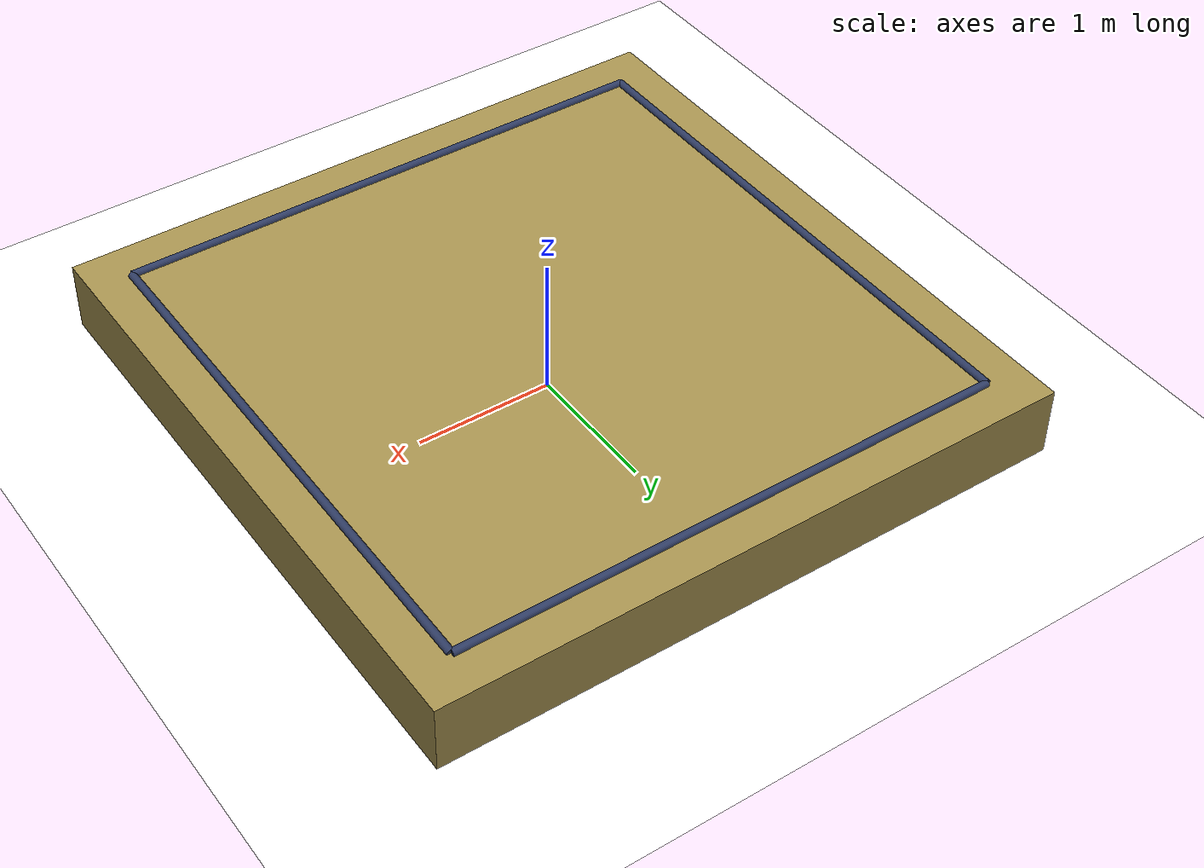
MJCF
<mujoco model="tatami_underwater">
  <compiler angle="degree" coordinate="local" inertiafromgeom="true"/>
	<option gravity="0 0 -0.1" integrator="RK4" timestep="0.01" viscosity="0.001" density="5000" />
  <size nconmax="1000" njmax="1000"/>
  <default>
    <joint armature="1" damping="1" limited="true"/>
  </default>
  <asset>
    <texture builtin="gradient" height="100" rgb1=".8 .8 1" rgb2="0 0 0" type="skybox" width="100"/>
    <texture builtin="flat" height="1278" mark="cross" markrgb="1 1 1" name="texgeom" random="0.01" rgb1="0.8 0.6 0.4" rgb2="0.8 0.6 0.4" type="cube" width="127"/>
    <texture builtin="flat" height="100" name="floorplane" rgb1=".2 0.2 0.2" rgb2="0 0 0" type="2d" width="100"/>
    <texture builtin="flat" height="100" name="tatamiplane" rgb1=".65 0.57 0.31" rgb2="0 0 0" type="2d" width="100"/>
    <material name="MatPlane" reflectance="0.1" shininess="1" specular="1" texrepeat="1 1" texture="floorplane"/>
    <material name="TatamiPlane" reflectance="0.25" shininess="1" specular="1" texrepeat="1 1" texture="tatamiplane"/>
    <material name="geom" texture="texgeom" texuniform="true"/>
  </asset>
  <worldbody>
    <light cutoff="100" diffuse="1 1 1" dir="0 0 -1.3" directional="true" exponent="2" pos="0 0 1.3" specular=".5 .5 .5"/>
    <geom contype="1" conaffinity="1" friction="1 .1 .1" condim="3" material="MatPlane" name="floor" pos="0 0 -.025" rgba="1 1 1 1" size="20 20 0.125" type="plane"/>
    <geom conaffinity="1" condim="3" contype="1" friction="1 .1 .1" material="TatamiPlane" name="tatami" size="2.3 2.3 .25" pos="0 0 0.25" type="box" />
    <geom fromto="-2 2 .5  2 2 .5" name="topborder" rgba=".18 .23 .38 1" size=".03" type="cylinder"/>
    <geom fromto="2 -2 .5  2 2 .5" name="rightborder" rgba=".18 .23 .38 1" size=".03" type="cylinder"/>
    <geom fromto="-2 -2 .5  2 -2 .5" name="bottomborder" rgba=".18 .23 .38 1" size=".03" type="cylinder"/>
    <geom fromto="-2 -2 .5  -2 2 .5" name="leftborder" rgba=".18 .23 .38 1" size=".03" type="cylinder"/>
  </worldbody>
</mujoco>
